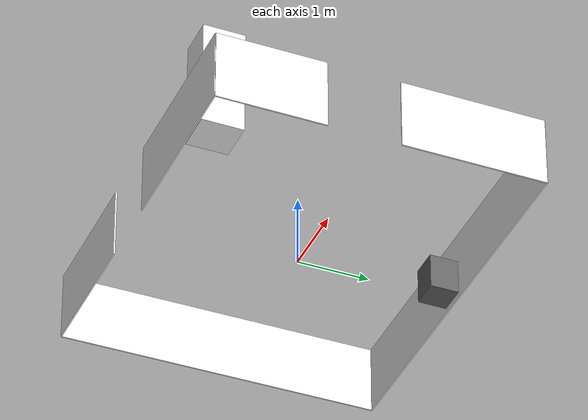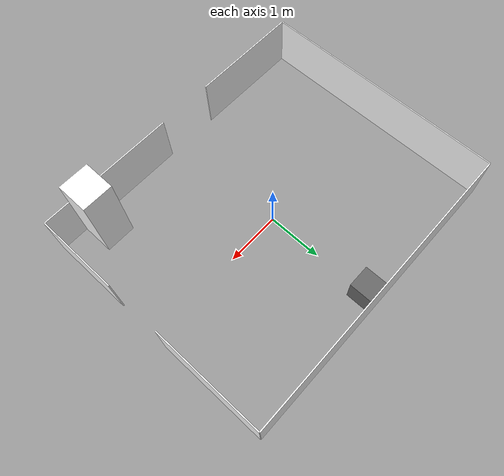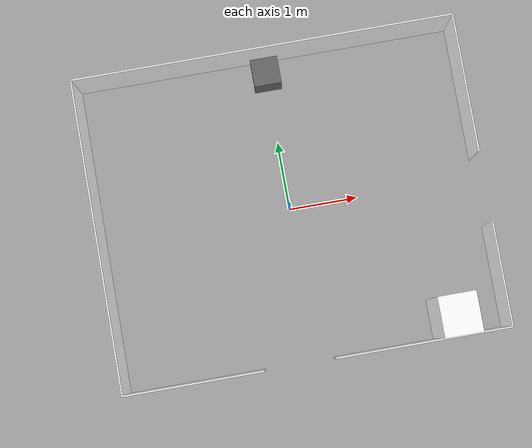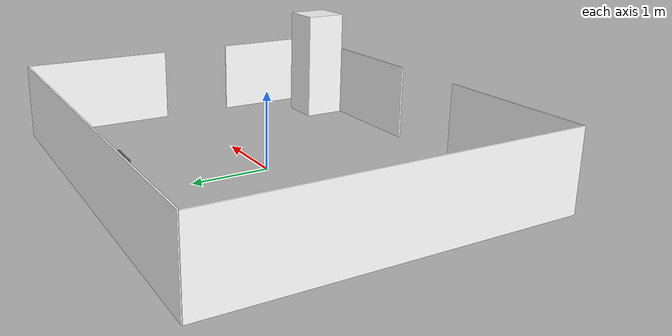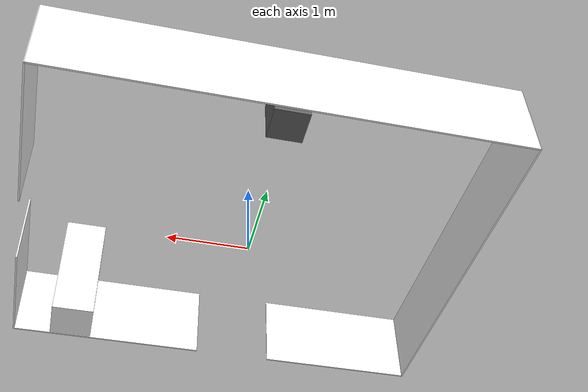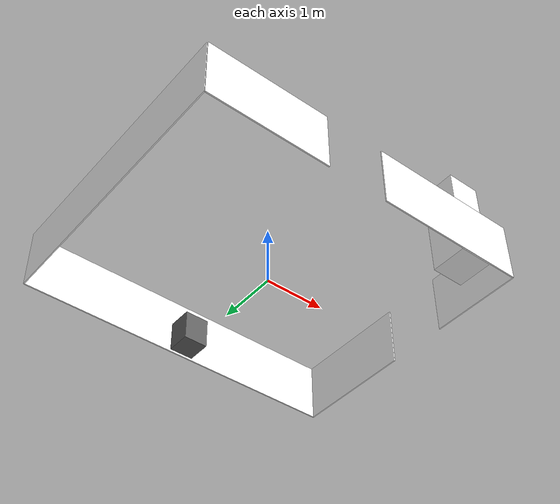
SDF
<sdf version="1.6">
    <model name="kitchen">
        <static>true</static>
        <!-- East wall 1 -->
        <link name="east_wall_1">
            <pose>2.75 1.25 0.5 0 0 0</pose>
            <visual name="visual_east_wall_1">
                <geometry>
                    <box>
                        <size>0.02 2.0 1.0</size>
                    </box>
                </geometry>
                <material>
                    <ambient>1 1 1 1</ambient> <!-- White color, fully opaque -->
                </material>
            </visual>
            <collision name="collision_east_wall_1">
                <geometry>
                    <box>
                        <size>0.02 2.0 1.0</size>
                    </box>
                </geometry>
            </collision>
        </link>

        <!-- East wall 2 -->
        <link name="east_wall_2">
            <pose>2.75 -1.5 0.5 0 0 0</pose>
            <visual name="visual_east_wall_2">
                <geometry>
                    <box>
                        <size>0.02 1.5 1.0</size>
                    </box>
                </geometry>
                <material>
                    <ambient>1 1 1 1</ambient>
                </material>
            </visual>
            <collision name="collision_east_wall_2">
                <geometry>
                    <box>
                        <size>0.02 1.5 1.0</size>
                    </box>
                </geometry>
            </collision>
        </link>

        <!-- North wall -->
        <link name="north_wall">
            <pose>0 2.25 0.5 0 0 0</pose>
            <visual name="visual_north_wall">
                <geometry>
                    <box>
                        <size>5.5 0.02 1.0</size>
                    </box>
                </geometry>
                <material>
                    <ambient>1 1 1 1</ambient>
                </material>
            </visual>
            <collision name="collision_north_wall">
                <geometry>
                    <box>
                        <size>5.5 0.02 1.0</size>
                    </box>
                </geometry>
            </collision>
        </link>

        <!-- South wall 1 -->
        <link name="south_wall_1">
            <pose>-1.75 -2.25 0.5 0 0 0</pose>
            <visual name="visual_south_wall_1">
                <geometry>
                    <box>
                        <size>2.0 0.02 1.0</size>
                    </box>
                </geometry>
                <material>
                    <ambient>1 1 1 1</ambient>
                </material>
            </visual>
            <collision name="collision_south_wall_1">
                <geometry>
                    <box>
                        <size>2.0 0.02 1.0</size>
                    </box>
                </geometry>
            </collision>
        </link>

        <!-- South wall 2 -->
        <link name="south_wall_2">
            <pose>1.5 -2.25 0.5 0 0 0</pose>
            <visual name="visual_south_wall_2">
                <geometry>
                    <box>
                        <size>2.5 0.02 1.0</size>
                    </box>
                </geometry>
                <material>
                    <ambient>1 1 1 1</ambient>
                </material>
            </visual>
            <collision name="collision_south_wall_2">
                <geometry>
                    <box>
                        <size>2.5 0.02 1.0</size>
                    </box>
                </geometry>
            </collision>
        </link>

        <!-- West wall -->
        <link name="west_wall">
            <pose>-2.75 0 0.5 0 0 0</pose>
            <visual name="visual_west_wall">
                <geometry>
                    <box>
                        <size>0.02 4.5 1.0</size>
                    </box>
                </geometry>
                <material>
                    <ambient>1 1 1 1</ambient>
                </material>
            </visual>
            <collision name="collision_west_wall">
                <geometry>
                    <box>
                        <size>0.02 4.5 1.0</size>
                    </box>
                </geometry>
            </collision>
        </link>

        <!-- Furniture -->
        <include>
            <uri>model://ar_ss26/furniture/dishwasher</uri>
            <pose>0 2.0 0 0 0 0</pose>
            <static>true</static>
        </include>
        <include>
            <uri>model://ar_ss26/furniture/fridge</uri>
            <pose>2.000000011175871 -1.9487794494628907 0 0 0 0</pose>
            <static>true</static>
        </include>

    </model>
</sdf>

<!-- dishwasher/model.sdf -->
<sdf version="1.6">
    <model name="dishwasher">
        <static>true</static>
        <!-- Body of the dishwasher -->
        <link name="body">
            <pose>0 0 0.25 0 0 0</pose>
            <visual name="visual_body">
                <geometry>
                    <box>
                        <size>0.4 0.4 0.5</size>
                    </box>
                </geometry>
                <material>
                    <ambient>0.4 0.4 0.4 1</ambient> <!-- Gray color, fully opaque -->
                </material>
            </visual>
            <collision name="collision_body">
                <geometry>
                    <box>
                        <size>0.4 0.4 0.5</size>
                    </box>
                </geometry>
            </collision>
        </link>
    </model>
</sdf>

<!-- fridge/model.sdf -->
<sdf version="1.6">
    <model name="fridge">
        <static>true</static>
        <!-- Body of the fridge -->
        <link name="body">
            <pose>0 0 0.76 0 0 0</pose>
            <visual name="visual_body">
                <geometry>
                    <box>
                        <size>0.54 0.57 1.52</size>
                    </box>
                </geometry>
                <material>
                    <ambient>1 1 1 1</ambient> <!-- White color, fully opaque -->
                </material>
            </visual>
            <collision name="collision_body">
                <geometry>
                    <box>
                        <size>0.54 0.57 1.52</size>
                    </box>
                </geometry>
            </collision>
        </link>
    </model>
</sdf>
